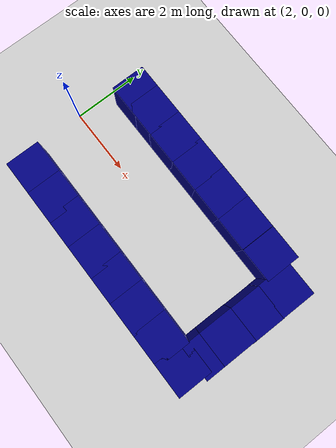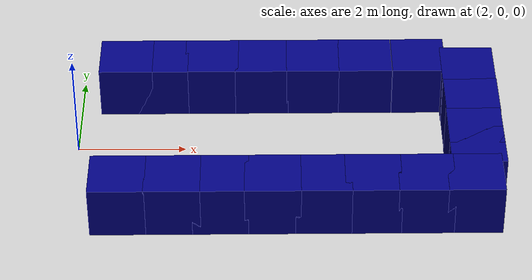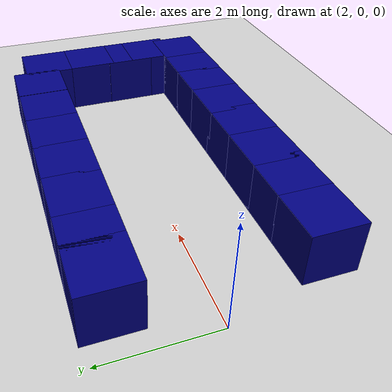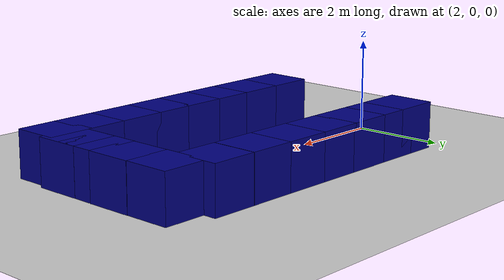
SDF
<sdf version='1.9'>
  <world name='empty'>
    <physics name='1ms' type='ignored'>
      <max_step_size>0.001</max_step_size>
      <real_time_factor>1</real_time_factor>
      <real_time_update_rate>1000</real_time_update_rate>
    </physics>
    <plugin name='gz::sim::systems::Physics' filename='ignition-gazebo-physics-system'/>
    <plugin name='gz::sim::systems::UserCommands' filename='ignition-gazebo-user-commands-system'/>
    <plugin name='gz::sim::systems::SceneBroadcaster' filename='ignition-gazebo-scene-broadcaster-system'/>
    <plugin name='gz::sim::systems::Contact' filename='ignition-gazebo-contact-system'/>
    <plugin name='gz::sim::systems::Sensors' filename='ignition-gazebo-sensors-system'/>
    <gravity>0 0 -9.8</gravity>
    <magnetic_field>6e-06 2.3e-05 -4.2e-05</magnetic_field>
    <atmosphere type='adiabatic'/>
    <scene>
      <ambient>0.4 0.4 0.4 1</ambient>
      <background>0.7 0.7 0.7 1</background>
      <shadows>true</shadows>
    </scene>
    <model name='ground_plane'>
      <static>true</static>
      <link name='link'>
        <collision name='collision'>
          <geometry>
            <plane>
              <normal>0 0 1</normal>
              <size>100 100</size>
            </plane>
          </geometry>
          <surface>
            <friction>
              <ode/>
            </friction>
            <bounce/>
            <contact/>
          </surface>
        </collision>
        <visual name='visual'>
          <geometry>
            <plane>
              <normal>0 0 1</normal>
              <size>100 100</size>
            </plane>
          </geometry>
          <material>
            <ambient>0.8 0.8 0.8 1</ambient>
            <diffuse>0.8 0.8 0.8 1</diffuse>
            <specular>0.8 0.8 0.8 1</specular>
          </material>
        </visual>
        <pose>0 0 0 0 -0 0</pose>
        <inertial>
          <pose>0 0 0 0 -0 0</pose>
          <mass>1</mass>
          <inertia>
            <ixx>1</ixx>
            <ixy>0</ixy>
            <ixz>0</ixz>
            <iyy>1</iyy>
            <iyz>0</iyz>
            <izz>1</izz>
          </inertia>
        </inertial>
        <enable_wind>false</enable_wind>
      </link>
      <pose>0 0 0 0 -0 0</pose>
      <self_collide>false</self_collide>
    </model>
    <model name='box'>
      <pose>2.86 -1.9 0.5 0 -0 0</pose>
      <link name='box_link'>
        <inertial>
          <inertia>
            <ixx>0.16666</ixx>
            <ixy>0</ixy>
            <ixz>0</ixz>
            <iyy>0.16666</iyy>
            <iyz>0</iyz>
            <izz>0.16666</izz>
          </inertia>
          <mass>1</mass>
          <pose>0 0 0 0 -0 0</pose>
        </inertial>
        <collision name='box_collision'>
          <geometry>
            <box>
              <size>1 1 1</size>
            </box>
          </geometry>
          <surface>
            <friction>
              <ode/>
            </friction>
            <bounce/>
            <contact/>
          </surface>
        </collision>
        <visual name='box_visual'>
          <geometry>
            <box>
              <size>1 1 1</size>
            </box>
          </geometry>
          <material>
            <ambient>0 0 0.2 1</ambient>
            <diffuse>0 0 0.5 1</diffuse>
            <specular>0 0 0.3 1</specular>
          </material>
        </visual>
        <pose>0 0 0 0 -0 0</pose>
        <enable_wind>false</enable_wind>
      </link>
      <static>false</static>
      <self_collide>false</self_collide>
    </model>
    <model name='box_1'>
      <pose>2.86 1.58 0.5 0 -0 0</pose>
      <link name='box_link'>
        <inertial>
          <inertia>
            <ixx>0.16666</ixx>
            <ixy>0</ixy>
            <ixz>0</ixz>
            <iyy>0.16666</iyy>
            <iyz>0</iyz>
            <izz>0.16666</izz>
          </inertia>
          <mass>1</mass>
        </inertial>
        <collision name='box_collision'>
          <geometry>
            <box>
              <size>1 1 1</size>
            </box>
          </geometry>
          <surface>
            <friction>
              <ode/>
            </friction>
            <bounce/>
            <contact/>
          </surface>
        </collision>
        <visual name='box_visual'>
          <geometry>
            <box>
              <size>1 1 1</size>
            </box>
          </geometry>
          <material>
            <ambient>0 0 0.2 1</ambient>
            <diffuse>0 0 0.5 1</diffuse>
            <specular>0 0 0.3 1</specular>
          </material>
        </visual>
      </link>
      <static>false</static>
      <self_collide>false</self_collide>
    </model>
    <model name='box_2'>
      <pose>3.84 -1.9 0.5 0 -0 0</pose>
      <link name='box_link'>
        <inertial>
          <inertia>
            <ixx>0.16666</ixx>
            <ixy>0</ixy>
            <ixz>0</ixz>
            <iyy>0.16666</iyy>
            <iyz>0</iyz>
            <izz>0.16666</izz>
          </inertia>
          <mass>1</mass>
        </inertial>
        <collision name='box_collision'>
          <geometry>
            <box>
              <size>1 1 1</size>
            </box>
          </geometry>
          <surface>
            <friction>
              <ode/>
            </friction>
            <bounce/>
            <contact/>
          </surface>
        </collision>
        <visual name='box_visual'>
          <geometry>
            <box>
              <size>1 1 1</size>
            </box>
          </geometry>
          <material>
            <ambient>0 0 0.2 1</ambient>
            <diffuse>0 0 0.5 1</diffuse>
            <specular>0 0 0.3 1</specular>
          </material>
        </visual>
      </link>
      <static>false</static>
      <self_collide>false</self_collide>
    </model>
    <model name='box_3'>
      <pose>4.69 -1.9 0.5 0 -0 0</pose>
      <link name='box_link'>
        <inertial>
          <inertia>
            <ixx>0.16666</ixx>
            <ixy>0</ixy>
            <ixz>0</ixz>
            <iyy>0.16666</iyy>
            <iyz>0</iyz>
            <izz>0.16666</izz>
          </inertia>
          <mass>1</mass>
        </inertial>
        <collision name='box_collision'>
          <geometry>
            <box>
              <size>1 1 1</size>
            </box>
          </geometry>
          <surface>
            <friction>
              <ode/>
            </friction>
            <bounce/>
            <contact/>
          </surface>
        </collision>
        <visual name='box_visual'>
          <geometry>
            <box>
              <size>1 1 1</size>
            </box>
          </geometry>
          <material>
            <ambient>0 0 0.2 1</ambient>
            <diffuse>0 0 0.5 1</diffuse>
            <specular>0 0 0.3 1</specular>
          </material>
        </visual>
      </link>
      <static>false</static>
      <self_collide>false</self_collide>
    </model>
    <model name='box_1_1'>
      <pose>3.53 1.58 0.5 0 -0 0</pose>
      <link name='box_link'>
        <inertial>
          <inertia>
            <ixx>0.16666</ixx>
            <ixy>0</ixy>
            <ixz>0</ixz>
            <iyy>0.16666</iyy>
            <iyz>0</iyz>
            <izz>0.16666</izz>
          </inertia>
          <mass>1</mass>
        </inertial>
        <collision name='box_collision'>
          <geometry>
            <box>
              <size>1 1 1</size>
            </box>
          </geometry>
          <surface>
            <friction>
              <ode/>
            </friction>
            <bounce/>
            <contact/>
          </surface>
        </collision>
        <visual name='box_visual'>
          <geometry>
            <box>
              <size>1 1 1</size>
            </box>
          </geometry>
          <material>
            <ambient>0 0 0.2 1</ambient>
            <diffuse>0 0 0.5 1</diffuse>
            <specular>0 0 0.3 1</specular>
          </material>
        </visual>
      </link>
      <static>false</static>
      <self_collide>false</self_collide>
    </model>
    <model name='box_1_2'>
      <pose>4.48 1.58 0.5 0 -0 0</pose>
      <link name='box_link'>
        <inertial>
          <inertia>
            <ixx>0.16666</ixx>
            <ixy>0</ixy>
            <ixz>0</ixz>
            <iyy>0.16666</iyy>
            <iyz>0</iyz>
            <izz>0.16666</izz>
          </inertia>
          <mass>1</mass>
        </inertial>
        <collision name='box_collision'>
          <geometry>
            <box>
              <size>1 1 1</size>
            </box>
          </geometry>
          <surface>
            <friction>
              <ode/>
            </friction>
            <bounce/>
            <contact/>
          </surface>
        </collision>
        <visual name='box_visual'>
          <geometry>
            <box>
              <size>1 1 1</size>
            </box>
          </geometry>
          <material>
            <ambient>0 0 0.2 1</ambient>
            <diffuse>0 0 0.5 1</diffuse>
            <specular>0 0 0.3 1</specular>
          </material>
        </visual>
      </link>
      <static>false</static>
      <self_collide>false</self_collide>
    </model>
    <model name='box_1_3'>
      <pose>5.42 1.58 0.5 0 -0 0</pose>
      <link name='box_link'>
        <inertial>
          <inertia>
            <ixx>0.16666</ixx>
            <ixy>0</ixy>
            <ixz>0</ixz>
            <iyy>0.16666</iyy>
            <iyz>0</iyz>
            <izz>0.16666</izz>
          </inertia>
          <mass>1</mass>
        </inertial>
        <collision name='box_collision'>
          <geometry>
            <box>
              <size>1 1 1</size>
            </box>
          </geometry>
          <surface>
            <friction>
              <ode/>
            </friction>
            <bounce/>
            <contact/>
          </surface>
        </collision>
        <visual name='box_visual'>
          <geometry>
            <box>
              <size>1 1 1</size>
            </box>
          </geometry>
          <material>
            <ambient>0 0 0.2 1</ambient>
            <diffuse>0 0 0.5 1</diffuse>
            <specular>0 0 0.3 1</specular>
          </material>
        </visual>
      </link>
      <static>false</static>
      <self_collide>false</self_collide>
    </model>
    <model name='box_1_4'>
      <pose>5.62 -1.9 0.5 0 -0 0</pose>
      <link name='box_link'>
        <inertial>
          <inertia>
            <ixx>0.16666</ixx>
            <ixy>0</ixy>
            <ixz>0</ixz>
            <iyy>0.16666</iyy>
            <iyz>0</iyz>
            <izz>0.16666</izz>
          </inertia>
          <mass>1</mass>
        </inertial>
        <collision name='box_collision'>
          <geometry>
            <box>
              <size>1 1 1</size>
            </box>
          </geometry>
          <surface>
            <friction>
              <ode/>
            </friction>
            <bounce/>
            <contact/>
          </surface>
        </collision>
        <visual name='box_visual'>
          <geometry>
            <box>
              <size>1 1 1</size>
            </box>
          </geometry>
          <material>
            <ambient>0 0 0.2 1</ambient>
            <diffuse>0 0 0.5 1</diffuse>
            <specular>0 0 0.3 1</specular>
          </material>
        </visual>
      </link>
      <static>false</static>
      <self_collide>false</self_collide>
    </model>
    <model name='box_1_5'>
      <pose>6.52 -1.9 0.5 0 -0 0</pose>
      <link name='box_link'>
        <inertial>
          <inertia>
            <ixx>0.16666</ixx>
            <ixy>0</ixy>
            <ixz>0</ixz>
            <iyy>0.16666</iyy>
            <iyz>0</iyz>
            <izz>0.16666</izz>
          </inertia>
          <mass>1</mass>
        </inertial>
        <collision name='box_collision'>
          <geometry>
            <box>
              <size>1 1 1</size>
            </box>
          </geometry>
          <surface>
            <friction>
              <ode/>
            </friction>
            <bounce/>
            <contact/>
          </surface>
        </collision>
        <visual name='box_visual'>
          <geometry>
            <box>
              <size>1 1 1</size>
            </box>
          </geometry>
          <material>
            <ambient>0 0 0.2 1</ambient>
            <diffuse>0 0 0.5 1</diffuse>
            <specular>0 0 0.3 1</specular>
          </material>
        </visual>
      </link>
      <static>false</static>
      <self_collide>false</self_collide>
    </model>
    <model name='box_1_6'>
      <pose>6.39 1.58 0.5 0 -0 0</pose>
      <link name='box_link'>
        <inertial>
          <inertia>
            <ixx>0.16666</ixx>
            <ixy>0</ixy>
            <ixz>0</ixz>
            <iyy>0.16666</iyy>
            <iyz>0</iyz>
            <izz>0.16666</izz>
          </inertia>
          <mass>1</mass>
        </inertial>
        <collision name='box_collision'>
          <geometry>
            <box>
              <size>1 1 1</size>
            </box>
          </geometry>
          <surface>
            <friction>
              <ode/>
            </friction>
            <bounce/>
            <contact/>
          </surface>
        </collision>
        <visual name='box_visual'>
          <geometry>
            <box>
              <size>1 1 1</size>
            </box>
          </geometry>
          <material>
            <ambient>0 0 0.2 1</ambient>
            <diffuse>0 0 0.5 1</diffuse>
            <specular>0 0 0.3 1</specular>
          </material>
        </visual>
      </link>
      <static>false</static>
      <self_collide>false</self_collide>
    </model>
    <model name='box_1_4_1'>
      <pose>7.4 -1.9 0.5 0 -0 0</pose>
      <link name='box_link'>
        <inertial>
          <inertia>
            <ixx>0.16666</ixx>
            <ixy>0</ixy>
            <ixz>0</ixz>
            <iyy>0.16666</iyy>
            <iyz>0</iyz>
            <izz>0.16666</izz>
          </inertia>
          <mass>1</mass>
        </inertial>
        <collision name='box_collision'>
          <geometry>
            <box>
              <size>1 1 1</size>
            </box>
          </geometry>
          <surface>
            <friction>
              <ode/>
            </friction>
            <bounce/>
            <contact/>
          </surface>
        </collision>
        <visual name='box_visual'>
          <geometry>
            <box>
              <size>1 1 1</size>
            </box>
          </geometry>
          <material>
            <ambient>0 0 0.2 1</ambient>
            <diffuse>0 0 0.5 1</diffuse>
            <specular>0 0 0.3 1</specular>
          </material>
        </visual>
      </link>
      <static>false</static>
      <self_collide>false</self_collide>
    </model>
    <model name='box_1_4_2'>
      <pose>8.34 -1.9 0.5 0 -0 0</pose>
      <link name='box_link'>
        <inertial>
          <inertia>
            <ixx>0.16666</ixx>
            <ixy>0</ixy>
            <ixz>0</ixz>
            <iyy>0.16666</iyy>
            <iyz>0</iyz>
            <izz>0.16666</izz>
          </inertia>
          <mass>1</mass>
        </inertial>
        <collision name='box_collision'>
          <geometry>
            <box>
              <size>1 1 1</size>
            </box>
          </geometry>
          <surface>
            <friction>
              <ode/>
            </friction>
            <bounce/>
            <contact/>
          </surface>
        </collision>
        <visual name='box_visual'>
          <geometry>
            <box>
              <size>1 1 1</size>
            </box>
          </geometry>
          <material>
            <ambient>0 0 0.2 1</ambient>
            <diffuse>0 0 0.5 1</diffuse>
            <specular>0 0 0.3 1</specular>
          </material>
        </visual>
      </link>
      <static>false</static>
      <self_collide>false</self_collide>
    </model>
    <model name='box_1_4_3'>
      <pose>9.21 -1.9 0.5 0 -0 0</pose>
      <link name='box_link'>
        <inertial>
          <inertia>
            <ixx>0.16666</ixx>
            <ixy>0</ixy>
            <ixz>0</ixz>
            <iyy>0.16666</iyy>
            <iyz>0</iyz>
            <izz>0.16666</izz>
          </inertia>
          <mass>1</mass>
        </inertial>
        <collision name='box_collision'>
          <geometry>
            <box>
              <size>1 1 1</size>
            </box>
          </geometry>
          <surface>
            <friction>
              <ode/>
            </friction>
            <bounce/>
            <contact/>
          </surface>
        </collision>
        <visual name='box_visual'>
          <geometry>
            <box>
              <size>1 1 1</size>
            </box>
          </geometry>
          <material>
            <ambient>0 0 0.2 1</ambient>
            <diffuse>0 0 0.5 1</diffuse>
            <specular>0 0 0.3 1</specular>
          </material>
        </visual>
      </link>
      <static>false</static>
      <self_collide>false</self_collide>
    </model>
    <model name='box_1_4_4'>
      <pose>7.38 1.58 0.5 0 -0 0</pose>
      <link name='box_link'>
        <inertial>
          <inertia>
            <ixx>0.16666</ixx>
            <ixy>0</ixy>
            <ixz>0</ixz>
            <iyy>0.16666</iyy>
            <iyz>0</iyz>
            <izz>0.16666</izz>
          </inertia>
          <mass>1</mass>
        </inertial>
        <collision name='box_collision'>
          <geometry>
            <box>
              <size>1 1 1</size>
            </box>
          </geometry>
          <surface>
            <friction>
              <ode/>
            </friction>
            <bounce/>
            <contact/>
          </surface>
        </collision>
        <visual name='box_visual'>
          <geometry>
            <box>
              <size>1 1 1</size>
            </box>
          </geometry>
          <material>
            <ambient>0 0 0.2 1</ambient>
            <diffuse>0 0 0.5 1</diffuse>
            <specular>0 0 0.3 1</specular>
          </material>
        </visual>
      </link>
      <static>false</static>
      <self_collide>false</self_collide>
    </model>
    <model name='box_1_4_5'>
      <pose>8.39 1.58 0.5 0 -0 0</pose>
      <link name='box_link'>
        <inertial>
          <inertia>
            <ixx>0.16666</ixx>
            <ixy>0</ixy>
            <ixz>0</ixz>
            <iyy>0.16666</iyy>
            <iyz>0</iyz>
            <izz>0.16666</izz>
          </inertia>
          <mass>1</mass>
        </inertial>
        <collision name='box_collision'>
          <geometry>
            <box>
              <size>1 1 1</size>
            </box>
          </geometry>
          <surface>
            <friction>
              <ode/>
            </friction>
            <bounce/>
            <contact/>
          </surface>
        </collision>
        <visual name='box_visual'>
          <geometry>
            <box>
              <size>1 1 1</size>
            </box>
          </geometry>
          <material>
            <ambient>0 0 0.2 1</ambient>
            <diffuse>0 0 0.5 1</diffuse>
            <specular>0 0 0.3 1</specular>
          </material>
        </visual>
      </link>
      <static>false</static>
      <self_collide>false</self_collide>
    </model>
    <model name='box_1_4_6'>
      <pose>9.31 1.3 0.5 0 -0 0</pose>
      <link name='box_link'>
        <inertial>
          <inertia>
            <ixx>0.16666</ixx>
            <ixy>0</ixy>
            <ixz>0</ixz>
            <iyy>0.16666</iyy>
            <iyz>0</iyz>
            <izz>0.16666</izz>
          </inertia>
          <mass>1</mass>
        </inertial>
        <collision name='box_collision'>
          <geometry>
            <box>
              <size>1 1 1</size>
            </box>
          </geometry>
          <surface>
            <friction>
              <ode/>
            </friction>
            <bounce/>
            <contact/>
          </surface>
        </collision>
        <visual name='box_visual'>
          <geometry>
            <box>
              <size>1 1 1</size>
            </box>
          </geometry>
          <material>
            <ambient>0 0 0.2 1</ambient>
            <diffuse>0 0 0.5 1</diffuse>
            <specular>0 0 0.3 1</specular>
          </material>
        </visual>
      </link>
      <static>false</static>
      <self_collide>false</self_collide>
    </model>
    <model name='box_1_4_7'>
      <pose>9.3171 0.322463 0.5 0 -0 0</pose>
      <link name='box_link'>
        <inertial>
          <inertia>
            <ixx>0.16666</ixx>
            <ixy>0</ixy>
            <ixz>0</ixz>
            <iyy>0.16666</iyy>
            <iyz>0</iyz>
            <izz>0.16666</izz>
          </inertia>
          <mass>1</mass>
        </inertial>
        <collision name='box_collision'>
          <geometry>
            <box>
              <size>1 1 1</size>
            </box>
          </geometry>
          <surface>
            <friction>
              <ode/>
            </friction>
            <bounce/>
            <contact/>
          </surface>
        </collision>
        <visual name='box_visual'>
          <geometry>
            <box>
              <size>1 1 1</size>
            </box>
          </geometry>
          <material>
            <ambient>0 0 0.2 1</ambient>
            <diffuse>0 0 0.5 1</diffuse>
            <specular>0 0 0.3 1</specular>
          </material>
        </visual>
      </link>
      <static>false</static>
      <self_collide>false</self_collide>
    </model>
    <model name='box_1_4_8'>
      <pose>9.30943 -0.575364 0.5 0 -0 0</pose>
      <link name='box_link'>
        <inertial>
          <inertia>
            <ixx>0.16666</ixx>
            <ixy>0</ixy>
            <ixz>0</ixz>
            <iyy>0.16666</iyy>
            <iyz>0</iyz>
            <izz>0.16666</izz>
          </inertia>
          <mass>1</mass>
        </inertial>
        <collision name='box_collision'>
          <geometry>
            <box>
              <size>1 1 1</size>
            </box>
          </geometry>
          <surface>
            <friction>
              <ode/>
            </friction>
            <bounce/>
            <contact/>
          </surface>
        </collision>
        <visual name='box_visual'>
          <geometry>
            <box>
              <size>1 1 1</size>
            </box>
          </geometry>
          <material>
            <ambient>0 0 0.2 1</ambient>
            <diffuse>0 0 0.5 1</diffuse>
            <specular>0 0 0.3 1</specular>
          </material>
        </visual>
      </link>
      <static>false</static>
      <self_collide>false</self_collide>
    </model>
    <model name='box_1_4_9'>
      <pose>9.31003 -1.12307 0.5 0 -0 0</pose>
      <link name='box_link'>
        <inertial>
          <inertia>
            <ixx>0.16666</ixx>
            <ixy>0</ixy>
            <ixz>0</ixz>
            <iyy>0.16666</iyy>
            <iyz>0</iyz>
            <izz>0.16666</izz>
          </inertia>
          <mass>1</mass>
        </inertial>
        <collision name='box_collision'>
          <geometry>
            <box>
              <size>1 1 1</size>
            </box>
          </geometry>
          <surface>
            <friction>
              <ode/>
            </friction>
            <bounce/>
            <contact/>
          </surface>
        </collision>
        <visual name='box_visual'>
          <geometry>
            <box>
              <size>1 1 1</size>
            </box>
          </geometry>
          <material>
            <ambient>0 0 0.2 1</ambient>
            <diffuse>0 0 0.5 1</diffuse>
            <specular>0 0 0.3 1</specular>
          </material>
        </visual>
      </link>
      <static>false</static>
      <self_collide>false</self_collide>
    </model>
    <light name='sun' type='directional'>
      <pose>0 0 10 0 -0 0</pose>
      <cast_shadows>true</cast_shadows>
      <intensity>1</intensity>
      <direction>-0.5 0.1 -0.9</direction>
      <diffuse>0.8 0.8 0.8 1</diffuse>
      <specular>0.2 0.2 0.2 1</specular>
      <attenuation>
        <range>1000</range>
        <linear>0.01</linear>
        <constant>0.90000000000000002</constant>
        <quadratic>0.001</quadratic>
      </attenuation>
      <spot>
        <inner_angle>0</inner_angle>
        <outer_angle>0</outer_angle>
        <falloff>0</falloff>
      </spot>
    </light>
  </world>
</sdf>
